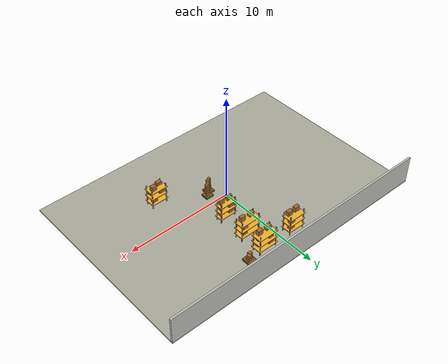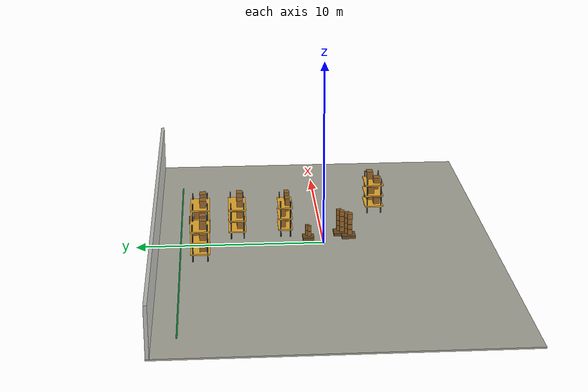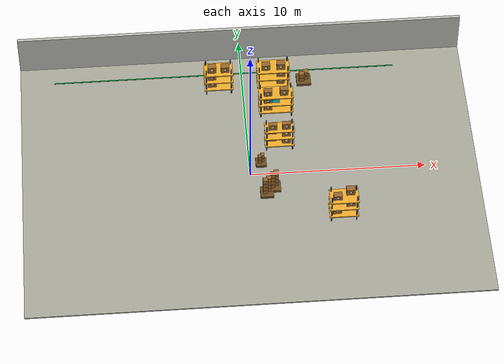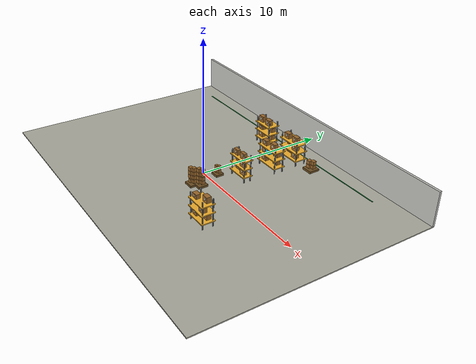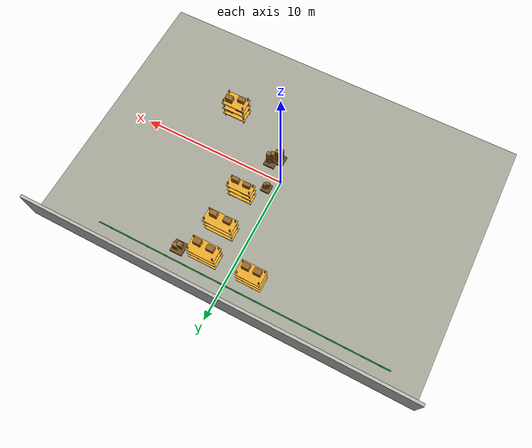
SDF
<sdf version="1.9">
 <world name="lidar_random_warehouse">
  <model name="floor">
   <static>true</static>
   <pose>0.000 0.000 -0.040 0 0 0</pose>
   <link name="link">
    <collision name="collision"><geometry><box><size>26.000 18.000 0.080</size></box></geometry></collision>
    <visual name="visual">
     <geometry><box><size>26.000 18.000 0.080</size></box></geometry>
     <material><ambient>0.50 0.50 0.47 1</ambient><diffuse>0.68 0.68 0.63 1</diffuse></material>
    </visual>
   </link>
  </model>
  <model name="main_aisle_right">
   <static>true</static>
   <pose>-1.000 7.650 0.006 0 0 0</pose>
   <link name="link">
    <collision name="collision"><geometry><box><size>20.000 0.070 0.012</size></box></geometry></collision>
    <visual name="visual">
     <geometry><box><size>20.000 0.070 0.012</size></box></geometry>
     <material><ambient>0.04 0.45 0.16 1</ambient><diffuse>0.04 0.55 0.20 1</diffuse></material>
    </visual>
   </link>
  </model>
  <model name="back_wall">
   <static>true</static>
   <pose>0.000 8.910 1.300 0 0 0</pose>
   <link name="link">
    <collision name="collision"><geometry><box><size>26.000 0.180 2.600</size></box></geometry></collision>
    <visual name="visual">
     <geometry><box><size>26.000 0.180 2.600</size></box></geometry>
     <material><ambient>0.66 0.66 0.64 1</ambient><diffuse>0.76 0.76 0.74 1</diffuse></material>
    </visual>
   </link>
  </model>
  <model name="shelf_9">
   <static>true</static>
   <pose>5.000 -3.200 0 0 0 0</pose>
   <link name="link">
    <collision name="collision">
     <pose>0 0 1.025 0 0 0</pose>
     <geometry><box><size>1.487 0.843 2.050</size></box></geometry>
    </collision>
    <visual name="post_0">
     <pose>-0.709 -0.386 1.025 0 0 0</pose>
     <geometry><box><size>0.070 0.070 2.050</size></box></geometry>
     <material><ambient>0.03 0.04 0.05 1</ambient><diffuse>0.05 0.06 0.07 1</diffuse></material>
    </visual>
    <visual name="post_1">
     <pose>-0.709 0.386 1.025 0 0 0</pose>
     <geometry><box><size>0.070 0.070 2.050</size></box></geometry>
     <material><ambient>0.03 0.04 0.05 1</ambient><diffuse>0.05 0.06 0.07 1</diffuse></material>
    </visual>
    <visual name="post_2">
     <pose>0.709 -0.386 1.025 0 0 0</pose>
     <geometry><box><size>0.070 0.070 2.050</size></box></geometry>
     <material><ambient>0.03 0.04 0.05 1</ambient><diffuse>0.05 0.06 0.07 1</diffuse></material>
    </visual>
    <visual name="post_3">
     <pose>0.709 0.386 1.025 0 0 0</pose>
     <geometry><box><size>0.070 0.070 2.050</size></box></geometry>
     <material><ambient>0.03 0.04 0.05 1</ambient><diffuse>0.05 0.06 0.07 1</diffuse></material>
    </visual>
    <visual name="deck_1">
     <pose>0.000 0.000 0.420 0 0 0</pose>
     <geometry><box><size>1.627 1.023 0.070</size></box></geometry>
     <material><ambient>0.70 0.52 0.18 1</ambient><diffuse>0.96 0.70 0.18 1</diffuse></material>
    </visual>
    <visual name="box_1_-0.4">
     <pose>-0.372 -0.152 0.693 0 0 0</pose>
     <geometry><box><size>0.480 0.340 0.386</size></box></geometry>
     <material><ambient>0.44 0.28 0.11 1</ambient><diffuse>0.62 0.42 0.18 1</diffuse></material>
    </visual>
    <visual name="label_1_-0.4">
     <pose>-0.372 -0.326 0.721 0 0 0</pose>
     <geometry><box><size>0.134 0.012 0.147</size></box></geometry>
     <material><ambient>0.86 0.86 0.76 1</ambient><diffuse>0.98 0.96 0.84 1</diffuse></material>
    </visual>
    <visual name="barcode_1_-0.4">
     <pose>-0.285 -0.330 0.721 0 0 0</pose>
     <geometry><box><size>0.029 0.014 0.131</size></box></geometry>
     <material><ambient>0.02 0.02 0.02 1</ambient><diffuse>0.02 0.02 0.02 1</diffuse></material>
    </visual>
    <visual name="box_1_0.4">
     <pose>0.372 0.152 0.698 0 0 0</pose>
     <geometry><box><size>0.480 0.340 0.396</size></box></geometry>
     <material><ambient>0.44 0.28 0.11 1</ambient><diffuse>0.62 0.42 0.18 1</diffuse></material>
    </visual>
    <visual name="label_1_0.4">
     <pose>0.372 -0.022 0.726 0 0 0</pose>
     <geometry><box><size>0.134 0.012 0.151</size></box></geometry>
     <material><ambient>0.86 0.86 0.76 1</ambient><diffuse>0.98 0.96 0.84 1</diffuse></material>
    </visual>
    <visual name="barcode_1_0.4">
     <pose>0.458 -0.026 0.726 0 0 0</pose>
     <geometry><box><size>0.029 0.014 0.135</size></box></geometry>
     <material><ambient>0.02 0.02 0.02 1</ambient><diffuse>0.02 0.02 0.02 1</diffuse></material>
    </visual>
    <visual name="deck_2">
     <pose>0.000 0.000 1.040 0 0 0</pose>
     <geometry><box><size>1.627 1.023 0.070</size></box></geometry>
     <material><ambient>0.70 0.52 0.18 1</ambient><diffuse>0.96 0.70 0.18 1</diffuse></material>
    </visual>
    <visual name="box_2_-0.4">
     <pose>-0.372 0.152 1.326 0 0 0</pose>
     <geometry><box><size>0.480 0.340 0.412</size></box></geometry>
     <material><ambient>0.44 0.28 0.11 1</ambient><diffuse>0.62 0.42 0.18 1</diffuse></material>
    </visual>
    <visual name="label_2_-0.4">
     <pose>-0.372 -0.022 1.354 0 0 0</pose>
     <geometry><box><size>0.134 0.012 0.157</size></box></geometry>
     <material><ambient>0.86 0.86 0.76 1</ambient><diffuse>0.98 0.96 0.84 1</diffuse></material>
    </visual>
    <visual name="barcode_2_-0.4">
     <pose>-0.285 -0.026 1.354 0 0 0</pose>
     <geometry><box><size>0.029 0.014 0.140</size></box></geometry>
     <material><ambient>0.02 0.02 0.02 1</ambient><diffuse>0.02 0.02 0.02 1</diffuse></material>
    </visual>
    <visual name="box_2_0.4">
     <pose>0.372 -0.152 1.302 0 0 0</pose>
     <geometry><box><size>0.480 0.340 0.363</size></box></geometry>
     <material><ambient>0.44 0.28 0.11 1</ambient><diffuse>0.62 0.42 0.18 1</diffuse></material>
    </visual>
    <visual name="label_2_0.4">
     <pose>0.372 -0.326 1.329 0 0 0</pose>
     <geometry><box><size>0.134 0.012 0.138</size></box></geometry>
     <material><ambient>0.86 0.86 0.76 1</ambient><diffuse>0.98 0.96 0.84 1</diffuse></material>
    </visual>
    <visual name="barcode_2_0.4">
     <pose>0.458 -0.330 1.329 0 0 0</pose>
     <geometry><box><size>0.029 0.014 0.124</size></box></geometry>
     <material><ambient>0.02 0.02 0.02 1</ambient><diffuse>0.02 0.02 0.02 1</diffuse></material>
    </visual>
    <visual name="deck_3">
     <pose>0.000 0.000 1.660 0 0 0</pose>
     <geometry><box><size>1.627 1.023 0.070</size></box></geometry>
     <material><ambient>0.70 0.52 0.18 1</ambient><diffuse>0.96 0.70 0.18 1</diffuse></material>
    </visual>
    <visual name="box_3_-0.4">
     <pose>-0.372 -0.152 1.900 0 0 0</pose>
     <geometry><box><size>0.480 0.340 0.320</size></box></geometry>
     <material><ambient>0.44 0.28 0.11 1</ambient><diffuse>0.62 0.42 0.18 1</diffuse></material>
    </visual>
    <visual name="label_3_-0.4">
     <pose>-0.372 -0.326 1.926 0 0 0</pose>
     <geometry><box><size>0.134 0.012 0.121</size></box></geometry>
     <material><ambient>0.86 0.86 0.76 1</ambient><diffuse>0.98 0.96 0.84 1</diffuse></material>
    </visual>
    <visual name="barcode_3_-0.4">
     <pose>-0.285 -0.330 1.926 0 0 0</pose>
     <geometry><box><size>0.029 0.014 0.109</size></box></geometry>
     <material><ambient>0.02 0.02 0.02 1</ambient><diffuse>0.02 0.02 0.02 1</diffuse></material>
    </visual>
    <visual name="box_3_0.4">
     <pose>0.372 0.152 1.955 0 0 0</pose>
     <geometry><box><size>0.480 0.340 0.430</size></box></geometry>
     <material><ambient>0.44 0.28 0.11 1</ambient><diffuse>0.62 0.42 0.18 1</diffuse></material>
    </visual>
    <visual name="label_3_0.4">
     <pose>0.372 -0.022 1.984 0 0 0</pose>
     <geometry><box><size>0.134 0.012 0.163</size></box></geometry>
     <material><ambient>0.86 0.86 0.76 1</ambient><diffuse>0.98 0.96 0.84 1</diffuse></material>
    </visual>
    <visual name="barcode_3_0.4">
     <pose>0.458 -0.026 1.984 0 0 0</pose>
     <geometry><box><size>0.029 0.014 0.146</size></box></geometry>
     <material><ambient>0.02 0.02 0.02 1</ambient><diffuse>0.02 0.02 0.02 1</diffuse></material>
    </visual>
   </link>
  </model>
  <model name="shelf_16">
   <static>true</static>
   <pose>1.800 2.000 0 0 0 0</pose>
   <link name="link">
    <collision name="collision">
     <pose>0 0 1.025 0 0 0</pose>
     <geometry><box><size>1.550 0.594 2.050</size></box></geometry>
    </collision>
    <visual name="post_0">
     <pose>-0.740 -0.262 1.025 0 0 0</pose>
     <geometry><box><size>0.070 0.070 2.050</size></box></geometry>
     <material><ambient>0.03 0.04 0.05 1</ambient><diffuse>0.05 0.06 0.07 1</diffuse></material>
    </visual>
    <visual name="post_1">
     <pose>-0.740 0.262 1.025 0 0 0</pose>
     <geometry><box><size>0.070 0.070 2.050</size></box></geometry>
     <material><ambient>0.03 0.04 0.05 1</ambient><diffuse>0.05 0.06 0.07 1</diffuse></material>
    </visual>
    <visual name="post_2">
     <pose>0.740 -0.262 1.025 0 0 0</pose>
     <geometry><box><size>0.070 0.070 2.050</size></box></geometry>
     <material><ambient>0.03 0.04 0.05 1</ambient><diffuse>0.05 0.06 0.07 1</diffuse></material>
    </visual>
    <visual name="post_3">
     <pose>0.740 0.262 1.025 0 0 0</pose>
     <geometry><box><size>0.070 0.070 2.050</size></box></geometry>
     <material><ambient>0.03 0.04 0.05 1</ambient><diffuse>0.05 0.06 0.07 1</diffuse></material>
    </visual>
    <visual name="deck_1">
     <pose>0.000 0.000 0.420 0 0 0</pose>
     <geometry><box><size>1.690 0.774 0.070</size></box></geometry>
     <material><ambient>0.70 0.52 0.18 1</ambient><diffuse>0.96 0.70 0.18 1</diffuse></material>
    </visual>
    <visual name="box_1_-0.4">
     <pose>-0.388 0.107 0.732 0 0 0</pose>
     <geometry><box><size>0.480 0.249 0.464</size></box></geometry>
     <material><ambient>0.44 0.28 0.11 1</ambient><diffuse>0.62 0.42 0.18 1</diffuse></material>
    </visual>
    <visual name="label_1_-0.4">
     <pose>-0.388 -0.022 0.761 0 0 0</pose>
     <geometry><box><size>0.134 0.012 0.176</size></box></geometry>
     <material><ambient>0.86 0.86 0.76 1</ambient><diffuse>0.98 0.96 0.84 1</diffuse></material>
    </visual>
    <visual name="barcode_1_-0.4">
     <pose>-0.301 -0.026 0.761 0 0 0</pose>
     <geometry><box><size>0.029 0.014 0.158</size></box></geometry>
     <material><ambient>0.02 0.02 0.02 1</ambient><diffuse>0.02 0.02 0.02 1</diffuse></material>
    </visual>
    <visual name="box_1_0.4">
     <pose>0.388 -0.107 0.726 0 0 0</pose>
     <geometry><box><size>0.480 0.249 0.451</size></box></geometry>
     <material><ambient>0.44 0.28 0.11 1</ambient><diffuse>0.62 0.42 0.18 1</diffuse></material>
    </visual>
    <visual name="label_1_0.4">
     <pose>0.388 -0.236 0.755 0 0 0</pose>
     <geometry><box><size>0.134 0.012 0.171</size></box></geometry>
     <material><ambient>0.86 0.86 0.76 1</ambient><diffuse>0.98 0.96 0.84 1</diffuse></material>
    </visual>
    <visual name="barcode_1_0.4">
     <pose>0.474 -0.240 0.755 0 0 0</pose>
     <geometry><box><size>0.029 0.014 0.153</size></box></geometry>
     <material><ambient>0.02 0.02 0.02 1</ambient><diffuse>0.02 0.02 0.02 1</diffuse></material>
    </visual>
    <visual name="deck_2">
     <pose>0.000 0.000 1.040 0 0 0</pose>
     <geometry><box><size>1.690 0.774 0.070</size></box></geometry>
     <material><ambient>0.70 0.52 0.18 1</ambient><diffuse>0.96 0.70 0.18 1</diffuse></material>
    </visual>
    <visual name="box_2_-0.4">
     <pose>-0.388 0.107 1.329 0 0 0</pose>
     <geometry><box><size>0.480 0.249 0.418</size></box></geometry>
     <material><ambient>0.44 0.28 0.11 1</ambient><diffuse>0.62 0.42 0.18 1</diffuse></material>
    </visual>
    <visual name="label_2_-0.4">
     <pose>-0.388 -0.022 1.358 0 0 0</pose>
     <geometry><box><size>0.134 0.012 0.159</size></box></geometry>
     <material><ambient>0.86 0.86 0.76 1</ambient><diffuse>0.98 0.96 0.84 1</diffuse></material>
    </visual>
    <visual name="barcode_2_-0.4">
     <pose>-0.301 -0.026 1.358 0 0 0</pose>
     <geometry><box><size>0.029 0.014 0.142</size></box></geometry>
     <material><ambient>0.02 0.02 0.02 1</ambient><diffuse>0.02 0.02 0.02 1</diffuse></material>
    </visual>
    <visual name="box_2_0.4">
     <pose>0.388 -0.107 1.353 0 0 0</pose>
     <geometry><box><size>0.480 0.249 0.466</size></box></geometry>
     <material><ambient>0.44 0.28 0.11 1</ambient><diffuse>0.62 0.42 0.18 1</diffuse></material>
    </visual>
    <visual name="label_2_0.4">
     <pose>0.388 -0.236 1.382 0 0 0</pose>
     <geometry><box><size>0.134 0.012 0.177</size></box></geometry>
     <material><ambient>0.86 0.86 0.76 1</ambient><diffuse>0.98 0.96 0.84 1</diffuse></material>
    </visual>
    <visual name="barcode_2_0.4">
     <pose>0.474 -0.240 1.382 0 0 0</pose>
     <geometry><box><size>0.029 0.014 0.158</size></box></geometry>
     <material><ambient>0.02 0.02 0.02 1</ambient><diffuse>0.02 0.02 0.02 1</diffuse></material>
    </visual>
    <visual name="deck_3">
     <pose>0.000 0.000 1.660 0 0 0</pose>
     <geometry><box><size>1.690 0.774 0.070</size></box></geometry>
     <material><ambient>0.70 0.52 0.18 1</ambient><diffuse>0.96 0.70 0.18 1</diffuse></material>
    </visual>
    <visual name="box_3_-0.4">
     <pose>-0.388 -0.107 1.942 0 0 0</pose>
     <geometry><box><size>0.480 0.249 0.403</size></box></geometry>
     <material><ambient>0.44 0.28 0.11 1</ambient><diffuse>0.62 0.42 0.18 1</diffuse></material>
    </visual>
    <visual name="label_3_-0.4">
     <pose>-0.388 -0.236 1.970 0 0 0</pose>
     <geometry><box><size>0.134 0.012 0.153</size></box></geometry>
     <material><ambient>0.86 0.86 0.76 1</ambient><diffuse>0.98 0.96 0.84 1</diffuse></material>
    </visual>
    <visual name="barcode_3_-0.4">
     <pose>-0.301 -0.240 1.970 0 0 0</pose>
     <geometry><box><size>0.029 0.014 0.137</size></box></geometry>
     <material><ambient>0.02 0.02 0.02 1</ambient><diffuse>0.02 0.02 0.02 1</diffuse></material>
    </visual>
    <visual name="box_3_0.4">
     <pose>0.388 -0.107 1.968 0 0 0</pose>
     <geometry><box><size>0.480 0.249 0.456</size></box></geometry>
     <material><ambient>0.44 0.28 0.11 1</ambient><diffuse>0.62 0.42 0.18 1</diffuse></material>
    </visual>
    <visual name="label_3_0.4">
     <pose>0.388 -0.236 1.997 0 0 0</pose>
     <geometry><box><size>0.134 0.012 0.173</size></box></geometry>
     <material><ambient>0.86 0.86 0.76 1</ambient><diffuse>0.98 0.96 0.84 1</diffuse></material>
    </visual>
    <visual name="barcode_3_0.4">
     <pose>0.474 -0.240 1.997 0 0 0</pose>
     <geometry><box><size>0.029 0.014 0.155</size></box></geometry>
     <material><ambient>0.02 0.02 0.02 1</ambient><diffuse>0.02 0.02 0.02 1</diffuse></material>
    </visual>
   </link>
  </model>
  <model name="shelf_20">
   <static>true</static>
   <pose>1.800 4.600 0 0 0 0</pose>
   <link name="link">
    <collision name="collision">
     <pose>0 0 1.025 0 0 0</pose>
     <geometry><box><size>1.852 0.761 2.050</size></box></geometry>
    </collision>
    <visual name="post_0">
     <pose>-0.891 -0.345 1.025 0 0 0</pose>
     <geometry><box><size>0.070 0.070 2.050</size></box></geometry>
     <material><ambient>0.03 0.04 0.05 1</ambient><diffuse>0.05 0.06 0.07 1</diffuse></material>
    </visual>
    <visual name="post_1">
     <pose>-0.891 0.345 1.025 0 0 0</pose>
     <geometry><box><size>0.070 0.070 2.050</size></box></geometry>
     <material><ambient>0.03 0.04 0.05 1</ambient><diffuse>0.05 0.06 0.07 1</diffuse></material>
    </visual>
    <visual name="post_2">
     <pose>0.891 -0.345 1.025 0 0 0</pose>
     <geometry><box><size>0.070 0.070 2.050</size></box></geometry>
     <material><ambient>0.03 0.04 0.05 1</ambient><diffuse>0.05 0.06 0.07 1</diffuse></material>
    </visual>
    <visual name="post_3">
     <pose>0.891 0.345 1.025 0 0 0</pose>
     <geometry><box><size>0.070 0.070 2.050</size></box></geometry>
     <material><ambient>0.03 0.04 0.05 1</ambient><diffuse>0.05 0.06 0.07 1</diffuse></material>
    </visual>
    <visual name="deck_1">
     <pose>0.000 0.000 0.420 0 0 0</pose>
     <geometry><box><size>1.992 0.941 0.070</size></box></geometry>
     <material><ambient>0.70 0.52 0.18 1</ambient><diffuse>0.96 0.70 0.18 1</diffuse></material>
    </visual>
    <visual name="box_1_-0.5">
     <pose>-0.463 -0.137 0.694 0 0 0</pose>
     <geometry><box><size>0.480 0.319 0.389</size></box></geometry>
     <material><ambient>0.44 0.28 0.11 1</ambient><diffuse>0.62 0.42 0.18 1</diffuse></material>
    </visual>
    <visual name="label_1_-0.5">
     <pose>-0.463 -0.301 0.722 0 0 0</pose>
     <geometry><box><size>0.134 0.012 0.148</size></box></geometry>
     <material><ambient>0.86 0.86 0.76 1</ambient><diffuse>0.98 0.96 0.84 1</diffuse></material>
    </visual>
    <visual name="barcode_1_-0.5">
     <pose>-0.377 -0.305 0.722 0 0 0</pose>
     <geometry><box><size>0.029 0.014 0.132</size></box></geometry>
     <material><ambient>0.02 0.02 0.02 1</ambient><diffuse>0.02 0.02 0.02 1</diffuse></material>
    </visual>
    <visual name="box_1_0.5">
     <pose>0.463 0.137 0.667 0 0 0</pose>
     <geometry><box><size>0.480 0.319 0.334</size></box></geometry>
     <material><ambient>0.44 0.28 0.11 1</ambient><diffuse>0.62 0.42 0.18 1</diffuse></material>
    </visual>
    <visual name="label_1_0.5">
     <pose>0.463 -0.027 0.693 0 0 0</pose>
     <geometry><box><size>0.134 0.012 0.127</size></box></geometry>
     <material><ambient>0.86 0.86 0.76 1</ambient><diffuse>0.98 0.96 0.84 1</diffuse></material>
    </visual>
    <visual name="barcode_1_0.5">
     <pose>0.549 -0.031 0.693 0 0 0</pose>
     <geometry><box><size>0.029 0.014 0.113</size></box></geometry>
     <material><ambient>0.02 0.02 0.02 1</ambient><diffuse>0.02 0.02 0.02 1</diffuse></material>
    </visual>
    <visual name="deck_2">
     <pose>0.000 0.000 1.040 0 0 0</pose>
     <geometry><box><size>1.992 0.941 0.070</size></box></geometry>
     <material><ambient>0.70 0.52 0.18 1</ambient><diffuse>0.96 0.70 0.18 1</diffuse></material>
    </visual>
    <visual name="box_2_-0.5">
     <pose>-0.463 -0.137 1.287 0 0 0</pose>
     <geometry><box><size>0.480 0.319 0.334</size></box></geometry>
     <material><ambient>0.44 0.28 0.11 1</ambient><diffuse>0.62 0.42 0.18 1</diffuse></material>
    </visual>
    <visual name="label_2_-0.5">
     <pose>-0.463 -0.301 1.314 0 0 0</pose>
     <geometry><box><size>0.134 0.012 0.127</size></box></geometry>
     <material><ambient>0.86 0.86 0.76 1</ambient><diffuse>0.98 0.96 0.84 1</diffuse></material>
    </visual>
    <visual name="barcode_2_-0.5">
     <pose>-0.377 -0.305 1.314 0 0 0</pose>
     <geometry><box><size>0.029 0.014 0.114</size></box></geometry>
     <material><ambient>0.02 0.02 0.02 1</ambient><diffuse>0.02 0.02 0.02 1</diffuse></material>
    </visual>
    <visual name="box_2_0.5">
     <pose>0.463 0.137 1.307 0 0 0</pose>
     <geometry><box><size>0.480 0.319 0.373</size></box></geometry>
     <material><ambient>0.44 0.28 0.11 1</ambient><diffuse>0.62 0.42 0.18 1</diffuse></material>
    </visual>
    <visual name="label_2_0.5">
     <pose>0.463 -0.027 1.334 0 0 0</pose>
     <geometry><box><size>0.134 0.012 0.142</size></box></geometry>
     <material><ambient>0.86 0.86 0.76 1</ambient><diffuse>0.98 0.96 0.84 1</diffuse></material>
    </visual>
    <visual name="barcode_2_0.5">
     <pose>0.549 -0.031 1.334 0 0 0</pose>
     <geometry><box><size>0.029 0.014 0.127</size></box></geometry>
     <material><ambient>0.02 0.02 0.02 1</ambient><diffuse>0.02 0.02 0.02 1</diffuse></material>
    </visual>
    <visual name="deck_3">
     <pose>0.000 0.000 1.660 0 0 0</pose>
     <geometry><box><size>1.992 0.941 0.070</size></box></geometry>
     <material><ambient>0.70 0.52 0.18 1</ambient><diffuse>0.96 0.70 0.18 1</diffuse></material>
    </visual>
    <visual name="box_3_-0.5">
     <pose>-0.463 -0.137 1.923 0 0 0</pose>
     <geometry><box><size>0.480 0.319 0.365</size></box></geometry>
     <material><ambient>0.44 0.28 0.11 1</ambient><diffuse>0.62 0.42 0.18 1</diffuse></material>
    </visual>
    <visual name="label_3_-0.5">
     <pose>-0.463 -0.301 1.950 0 0 0</pose>
     <geometry><box><size>0.134 0.012 0.139</size></box></geometry>
     <material><ambient>0.86 0.86 0.76 1</ambient><diffuse>0.98 0.96 0.84 1</diffuse></material>
    </visual>
    <visual name="barcode_3_-0.5">
     <pose>-0.377 -0.305 1.950 0 0 0</pose>
     <geometry><box><size>0.029 0.014 0.124</size></box></geometry>
     <material><ambient>0.02 0.02 0.02 1</ambient><diffuse>0.02 0.02 0.02 1</diffuse></material>
    </visual>
    <visual name="box_3_0.5">
     <pose>0.463 -0.137 1.977 0 0 0</pose>
     <geometry><box><size>0.480 0.319 0.473</size></box></geometry>
     <material><ambient>0.44 0.28 0.11 1</ambient><diffuse>0.62 0.42 0.18 1</diffuse></material>
    </visual>
    <visual name="label_3_0.5">
     <pose>0.463 -0.301 2.006 0 0 0</pose>
     <geometry><box><size>0.134 0.012 0.180</size></box></geometry>
     <material><ambient>0.86 0.86 0.76 1</ambient><diffuse>0.98 0.96 0.84 1</diffuse></material>
    </visual>
    <visual name="barcode_3_0.5">
     <pose>0.549 -0.305 2.006 0 0 0</pose>
     <geometry><box><size>0.029 0.014 0.161</size></box></geometry>
     <material><ambient>0.02 0.02 0.02 1</ambient><diffuse>0.02 0.02 0.02 1</diffuse></material>
    </visual>
   </link>
  </model>
  <model name="shelf_24">
   <static>true</static>
   <pose>-1.400 6.600 0 0 0 0</pose>
   <link name="link">
    <collision name="collision">
     <pose>0 0 1.025 0 0 0</pose>
     <geometry><box><size>1.523 0.835 2.050</size></box></geometry>
    </collision>
    <visual name="post_0">
     <pose>-0.727 -0.383 1.025 0 0 0</pose>
     <geometry><box><size>0.070 0.070 2.050</size></box></geometry>
     <material><ambient>0.03 0.04 0.05 1</ambient><diffuse>0.05 0.06 0.07 1</diffuse></material>
    </visual>
    <visual name="post_1">
     <pose>-0.727 0.383 1.025 0 0 0</pose>
     <geometry><box><size>0.070 0.070 2.050</size></box></geometry>
     <material><ambient>0.03 0.04 0.05 1</ambient><diffuse>0.05 0.06 0.07 1</diffuse></material>
    </visual>
    <visual name="post_2">
     <pose>0.727 -0.383 1.025 0 0 0</pose>
     <geometry><box><size>0.070 0.070 2.050</size></box></geometry>
     <material><ambient>0.03 0.04 0.05 1</ambient><diffuse>0.05 0.06 0.07 1</diffuse></material>
    </visual>
    <visual name="post_3">
     <pose>0.727 0.383 1.025 0 0 0</pose>
     <geometry><box><size>0.070 0.070 2.050</size></box></geometry>
     <material><ambient>0.03 0.04 0.05 1</ambient><diffuse>0.05 0.06 0.07 1</diffuse></material>
    </visual>
    <visual name="deck_1">
     <pose>0.000 0.000 0.420 0 0 0</pose>
     <geometry><box><size>1.663 1.015 0.070</size></box></geometry>
     <material><ambient>0.70 0.52 0.18 1</ambient><diffuse>0.96 0.70 0.18 1</diffuse></material>
    </visual>
    <visual name="box_1_-0.4">
     <pose>-0.381 -0.150 0.728 0 0 0</pose>
     <geometry><box><size>0.480 0.340 0.455</size></box></geometry>
     <material><ambient>0.44 0.28 0.11 1</ambient><diffuse>0.62 0.42 0.18 1</diffuse></material>
    </visual>
    <visual name="label_1_-0.4">
     <pose>-0.381 -0.324 0.757 0 0 0</pose>
     <geometry><box><size>0.134 0.012 0.173</size></box></geometry>
     <material><ambient>0.86 0.86 0.76 1</ambient><diffuse>0.98 0.96 0.84 1</diffuse></material>
    </visual>
    <visual name="barcode_1_-0.4">
     <pose>-0.294 -0.328 0.757 0 0 0</pose>
     <geometry><box><size>0.029 0.014 0.155</size></box></geometry>
     <material><ambient>0.02 0.02 0.02 1</ambient><diffuse>0.02 0.02 0.02 1</diffuse></material>
    </visual>
    <visual name="box_1_0.4">
     <pose>0.381 0.150 0.692 0 0 0</pose>
     <geometry><box><size>0.480 0.340 0.384</size></box></geometry>
     <material><ambient>0.44 0.28 0.11 1</ambient><diffuse>0.62 0.42 0.18 1</diffuse></material>
    </visual>
    <visual name="label_1_0.4">
     <pose>0.381 -0.024 0.720 0 0 0</pose>
     <geometry><box><size>0.134 0.012 0.146</size></box></geometry>
     <material><ambient>0.86 0.86 0.76 1</ambient><diffuse>0.98 0.96 0.84 1</diffuse></material>
    </visual>
    <visual name="barcode_1_0.4">
     <pose>0.467 -0.028 0.720 0 0 0</pose>
     <geometry><box><size>0.029 0.014 0.130</size></box></geometry>
     <material><ambient>0.02 0.02 0.02 1</ambient><diffuse>0.02 0.02 0.02 1</diffuse></material>
    </visual>
    <visual name="deck_2">
     <pose>0.000 0.000 1.040 0 0 0</pose>
     <geometry><box><size>1.663 1.015 0.070</size></box></geometry>
     <material><ambient>0.70 0.52 0.18 1</ambient><diffuse>0.96 0.70 0.18 1</diffuse></material>
    </visual>
    <visual name="box_2_-0.4">
     <pose>-0.381 -0.150 1.276 0 0 0</pose>
     <geometry><box><size>0.480 0.340 0.312</size></box></geometry>
     <material><ambient>0.44 0.28 0.11 1</ambient><diffuse>0.62 0.42 0.18 1</diffuse></material>
    </visual>
    <visual name="label_2_-0.4">
     <pose>-0.381 -0.324 1.302 0 0 0</pose>
     <geometry><box><size>0.134 0.012 0.118</size></box></geometry>
     <material><ambient>0.86 0.86 0.76 1</ambient><diffuse>0.98 0.96 0.84 1</diffuse></material>
    </visual>
    <visual name="barcode_2_-0.4">
     <pose>-0.294 -0.328 1.302 0 0 0</pose>
     <geometry><box><size>0.029 0.014 0.106</size></box></geometry>
     <material><ambient>0.02 0.02 0.02 1</ambient><diffuse>0.02 0.02 0.02 1</diffuse></material>
    </visual>
    <visual name="box_2_0.4">
     <pose>0.381 0.150 1.289 0 0 0</pose>
     <geometry><box><size>0.480 0.340 0.337</size></box></geometry>
     <material><ambient>0.44 0.28 0.11 1</ambient><diffuse>0.62 0.42 0.18 1</diffuse></material>
    </visual>
    <visual name="label_2_0.4">
     <pose>0.381 -0.024 1.315 0 0 0</pose>
     <geometry><box><size>0.134 0.012 0.128</size></box></geometry>
     <material><ambient>0.86 0.86 0.76 1</ambient><diffuse>0.98 0.96 0.84 1</diffuse></material>
    </visual>
    <visual name="barcode_2_0.4">
     <pose>0.467 -0.028 1.315 0 0 0</pose>
     <geometry><box><size>0.029 0.014 0.115</size></box></geometry>
     <material><ambient>0.02 0.02 0.02 1</ambient><diffuse>0.02 0.02 0.02 1</diffuse></material>
    </visual>
    <visual name="deck_3">
     <pose>0.000 0.000 1.660 0 0 0</pose>
     <geometry><box><size>1.663 1.015 0.070</size></box></geometry>
     <material><ambient>0.70 0.52 0.18 1</ambient><diffuse>0.96 0.70 0.18 1</diffuse></material>
    </visual>
    <visual name="box_3_-0.4">
     <pose>-0.381 -0.150 1.969 0 0 0</pose>
     <geometry><box><size>0.480 0.340 0.458</size></box></geometry>
     <material><ambient>0.44 0.28 0.11 1</ambient><diffuse>0.62 0.42 0.18 1</diffuse></material>
    </visual>
    <visual name="label_3_-0.4">
     <pose>-0.381 -0.324 1.998 0 0 0</pose>
     <geometry><box><size>0.134 0.012 0.174</size></box></geometry>
     <material><ambient>0.86 0.86 0.76 1</ambient><diffuse>0.98 0.96 0.84 1</diffuse></material>
    </visual>
    <visual name="barcode_3_-0.4">
     <pose>-0.294 -0.328 1.998 0 0 0</pose>
     <geometry><box><size>0.029 0.014 0.156</size></box></geometry>
     <material><ambient>0.02 0.02 0.02 1</ambient><diffuse>0.02 0.02 0.02 1</diffuse></material>
    </visual>
    <visual name="box_3_0.4">
     <pose>0.381 -0.150 1.958 0 0 0</pose>
     <geometry><box><size>0.480 0.340 0.436</size></box></geometry>
     <material><ambient>0.44 0.28 0.11 1</ambient><diffuse>0.62 0.42 0.18 1</diffuse></material>
    </visual>
    <visual name="label_3_0.4">
     <pose>0.381 -0.324 1.987 0 0 0</pose>
     <geometry><box><size>0.134 0.012 0.166</size></box></geometry>
     <material><ambient>0.86 0.86 0.76 1</ambient><diffuse>0.98 0.96 0.84 1</diffuse></material>
    </visual>
    <visual name="barcode_3_0.4">
     <pose>0.467 -0.328 1.987 0 0 0</pose>
     <geometry><box><size>0.029 0.014 0.148</size></box></geometry>
     <material><ambient>0.02 0.02 0.02 1</ambient><diffuse>0.02 0.02 0.02 1</diffuse></material>
    </visual>
   </link>
  </model>
  <model name="shelf_25">
   <static>true</static>
   <pose>1.800 6.600 0 0 0 0</pose>
   <link name="link">
    <collision name="collision">
     <pose>0 0 1.025 0 0 0</pose>
     <geometry><box><size>1.752 0.851 2.050</size></box></geometry>
    </collision>
    <visual name="post_0">
     <pose>-0.841 -0.390 1.025 0 0 0</pose>
     <geometry><box><size>0.070 0.070 2.050</size></box></geometry>
     <material><ambient>0.03 0.04 0.05 1</ambient><diffuse>0.05 0.06 0.07 1</diffuse></material>
    </visual>
    <visual name="post_1">
     <pose>-0.841 0.390 1.025 0 0 0</pose>
     <geometry><box><size>0.070 0.070 2.050</size></box></geometry>
     <material><ambient>0.03 0.04 0.05 1</ambient><diffuse>0.05 0.06 0.07 1</diffuse></material>
    </visual>
    <visual name="post_2">
     <pose>0.841 -0.390 1.025 0 0 0</pose>
     <geometry><box><size>0.070 0.070 2.050</size></box></geometry>
     <material><ambient>0.03 0.04 0.05 1</ambient><diffuse>0.05 0.06 0.07 1</diffuse></material>
    </visual>
    <visual name="post_3">
     <pose>0.841 0.390 1.025 0 0 0</pose>
     <geometry><box><size>0.070 0.070 2.050</size></box></geometry>
     <material><ambient>0.03 0.04 0.05 1</ambient><diffuse>0.05 0.06 0.07 1</diffuse></material>
    </visual>
    <visual name="deck_1">
     <pose>0.000 0.000 0.420 0 0 0</pose>
     <geometry><box><size>1.892 1.031 0.070</size></box></geometry>
     <material><ambient>0.70 0.52 0.18 1</ambient><diffuse>0.96 0.70 0.18 1</diffuse></material>
    </visual>
    <visual name="box_1_-0.4">
     <pose>-0.438 0.153 0.732 0 0 0</pose>
     <geometry><box><size>0.480 0.340 0.464</size></box></geometry>
     <material><ambient>0.44 0.28 0.11 1</ambient><diffuse>0.62 0.42 0.18 1</diffuse></material>
    </visual>
    <visual name="label_1_-0.4">
     <pose>-0.438 -0.021 0.761 0 0 0</pose>
     <geometry><box><size>0.134 0.012 0.176</size></box></geometry>
     <material><ambient>0.86 0.86 0.76 1</ambient><diffuse>0.98 0.96 0.84 1</diffuse></material>
    </visual>
    <visual name="barcode_1_-0.4">
     <pose>-0.351 -0.025 0.761 0 0 0</pose>
     <geometry><box><size>0.029 0.014 0.158</size></box></geometry>
     <material><ambient>0.02 0.02 0.02 1</ambient><diffuse>0.02 0.02 0.02 1</diffuse></material>
    </visual>
    <visual name="box_1_0.4">
     <pose>0.438 -0.153 0.726 0 0 0</pose>
     <geometry><box><size>0.480 0.340 0.451</size></box></geometry>
     <material><ambient>0.44 0.28 0.11 1</ambient><diffuse>0.62 0.42 0.18 1</diffuse></material>
    </visual>
    <visual name="label_1_0.4">
     <pose>0.438 -0.327 0.755 0 0 0</pose>
     <geometry><box><size>0.134 0.012 0.171</size></box></geometry>
     <material><ambient>0.86 0.86 0.76 1</ambient><diffuse>0.98 0.96 0.84 1</diffuse></material>
    </visual>
    <visual name="barcode_1_0.4">
     <pose>0.524 -0.331 0.755 0 0 0</pose>
     <geometry><box><size>0.029 0.014 0.153</size></box></geometry>
     <material><ambient>0.02 0.02 0.02 1</ambient><diffuse>0.02 0.02 0.02 1</diffuse></material>
    </visual>
    <visual name="deck_2">
     <pose>0.000 0.000 1.040 0 0 0</pose>
     <geometry><box><size>1.892 1.031 0.070</size></box></geometry>
     <material><ambient>0.70 0.52 0.18 1</ambient><diffuse>0.96 0.70 0.18 1</diffuse></material>
    </visual>
    <visual name="box_2_-0.4">
     <pose>-0.438 0.153 1.329 0 0 0</pose>
     <geometry><box><size>0.480 0.340 0.418</size></box></geometry>
     <material><ambient>0.44 0.28 0.11 1</ambient><diffuse>0.62 0.42 0.18 1</diffuse></material>
    </visual>
    <visual name="label_2_-0.4">
     <pose>-0.438 -0.021 1.358 0 0 0</pose>
     <geometry><box><size>0.134 0.012 0.159</size></box></geometry>
     <material><ambient>0.86 0.86 0.76 1</ambient><diffuse>0.98 0.96 0.84 1</diffuse></material>
    </visual>
    <visual name="barcode_2_-0.4">
     <pose>-0.351 -0.025 1.358 0 0 0</pose>
     <geometry><box><size>0.029 0.014 0.142</size></box></geometry>
     <material><ambient>0.02 0.02 0.02 1</ambient><diffuse>0.02 0.02 0.02 1</diffuse></material>
    </visual>
    <visual name="box_2_0.4">
     <pose>0.438 -0.153 1.353 0 0 0</pose>
     <geometry><box><size>0.480 0.340 0.466</size></box></geometry>
     <material><ambient>0.44 0.28 0.11 1</ambient><diffuse>0.62 0.42 0.18 1</diffuse></material>
    </visual>
    <visual name="label_2_0.4">
     <pose>0.438 -0.327 1.382 0 0 0</pose>
     <geometry><box><size>0.134 0.012 0.177</size></box></geometry>
     <material><ambient>0.86 0.86 0.76 1</ambient><diffuse>0.98 0.96 0.84 1</diffuse></material>
    </visual>
    <visual name="barcode_2_0.4">
     <pose>0.524 -0.331 1.382 0 0 0</pose>
     <geometry><box><size>0.029 0.014 0.158</size></box></geometry>
     <material><ambient>0.02 0.02 0.02 1</ambient><diffuse>0.02 0.02 0.02 1</diffuse></material>
    </visual>
    <visual name="deck_3">
     <pose>0.000 0.000 1.660 0 0 0</pose>
     <geometry><box><size>1.892 1.031 0.070</size></box></geometry>
     <material><ambient>0.70 0.52 0.18 1</ambient><diffuse>0.96 0.70 0.18 1</diffuse></material>
    </visual>
    <visual name="box_3_-0.4">
     <pose>-0.438 -0.153 1.942 0 0 0</pose>
     <geometry><box><size>0.480 0.340 0.403</size></box></geometry>
     <material><ambient>0.44 0.28 0.11 1</ambient><diffuse>0.62 0.42 0.18 1</diffuse></material>
    </visual>
    <visual name="label_3_-0.4">
     <pose>-0.438 -0.327 1.970 0 0 0</pose>
     <geometry><box><size>0.134 0.012 0.153</size></box></geometry>
     <material><ambient>0.86 0.86 0.76 1</ambient><diffuse>0.98 0.96 0.84 1</diffuse></material>
    </visual>
    <visual name="barcode_3_-0.4">
     <pose>-0.351 -0.331 1.970 0 0 0</pose>
     <geometry><box><size>0.029 0.014 0.137</size></box></geometry>
     <material><ambient>0.02 0.02 0.02 1</ambient><diffuse>0.02 0.02 0.02 1</diffuse></material>
    </visual>
    <visual name="box_3_0.4">
     <pose>0.438 -0.153 1.968 0 0 0</pose>
     <geometry><box><size>0.480 0.340 0.456</size></box></geometry>
     <material><ambient>0.44 0.28 0.11 1</ambient><diffuse>0.62 0.42 0.18 1</diffuse></material>
    </visual>
    <visual name="label_3_0.4">
     <pose>0.438 -0.327 1.997 0 0 0</pose>
     <geometry><box><size>0.134 0.012 0.173</size></box></geometry>
     <material><ambient>0.86 0.86 0.76 1</ambient><diffuse>0.98 0.96 0.84 1</diffuse></material>
    </visual>
    <visual name="barcode_3_0.4">
     <pose>0.524 -0.331 1.997 0 0 0</pose>
     <geometry><box><size>0.029 0.014 0.155</size></box></geometry>
     <material><ambient>0.02 0.02 0.02 1</ambient><diffuse>0.02 0.02 0.02 1</diffuse></material>
    </visual>
   </link>
  </model>
  <model name="pallet_stack_1">
   <static>true</static>
   <pose>1.268 -0.997 0 0 0 0</pose>
   <link name="link">
    <collision name="collision">
     <pose>0 0 0.55 0 0 0</pose>
     <geometry><box><size>0.746 0.746 1.10</size></box></geometry>
    </collision>
    <visual name="pallet">
     <pose>0.000 0.000 0.080 0 0 0</pose>
     <geometry><box><size>0.746 0.746 0.160</size></box></geometry>
     <material><ambient>0.30 0.21 0.10 1</ambient><diffuse>0.44 0.32 0.14 1</diffuse></material>
    </visual>
    <visual name="case_0_a">
     <pose>-0.102 -0.068 0.340 0 0 0</pose>
     <geometry><box><size>0.271 0.254 0.280</size></box></geometry>
     <material><ambient>0.44 0.28 0.11 1</ambient><diffuse>0.62 0.42 0.18 1</diffuse></material>
    </visual>
    <visual name="case_0_b">
     <pose>0.102 0.068 0.340 0 0 0</pose>
     <geometry><box><size>0.271 0.254 0.280</size></box></geometry>
     <material><ambient>0.44 0.28 0.11 1</ambient><diffuse>0.62 0.42 0.18 1</diffuse></material>
    </visual>
    <visual name="case_1_a">
     <pose>-0.102 -0.068 0.640 0 0 0</pose>
     <geometry><box><size>0.271 0.254 0.280</size></box></geometry>
     <material><ambient>0.44 0.28 0.11 1</ambient><diffuse>0.62 0.42 0.18 1</diffuse></material>
    </visual>
    <visual name="case_1_b">
     <pose>0.102 0.068 0.640 0 0 0</pose>
     <geometry><box><size>0.271 0.254 0.280</size></box></geometry>
     <material><ambient>0.44 0.28 0.11 1</ambient><diffuse>0.62 0.42 0.18 1</diffuse></material>
    </visual>
    <visual name="case_2_a">
     <pose>-0.102 -0.068 0.940 0 0 0</pose>
     <geometry><box><size>0.271 0.254 0.280</size></box></geometry>
     <material><ambient>0.44 0.28 0.11 1</ambient><diffuse>0.62 0.42 0.18 1</diffuse></material>
    </visual>
    <visual name="case_2_b">
     <pose>0.102 0.068 0.940 0 0 0</pose>
     <geometry><box><size>0.271 0.254 0.280</size></box></geometry>
     <material><ambient>0.44 0.28 0.11 1</ambient><diffuse>0.62 0.42 0.18 1</diffuse></material>
    </visual>
    <visual name="case_3_a">
     <pose>-0.102 -0.068 1.240 0 0 0</pose>
     <geometry><box><size>0.271 0.254 0.280</size></box></geometry>
     <material><ambient>0.44 0.28 0.11 1</ambient><diffuse>0.62 0.42 0.18 1</diffuse></material>
    </visual>
    <visual name="case_3_b">
     <pose>0.102 0.068 1.240 0 0 0</pose>
     <geometry><box><size>0.271 0.254 0.280</size></box></geometry>
     <material><ambient>0.44 0.28 0.11 1</ambient><diffuse>0.62 0.42 0.18 1</diffuse></material>
    </visual>
   </link>
  </model>
  <model name="pallet_stack_2">
   <static>true</static>
   <pose>0.655 0.792 0 0 0 0</pose>
   <link name="link">
    <collision name="collision">
     <pose>0 0 0.55 0 0 0</pose>
     <geometry><box><size>0.609 0.609 1.10</size></box></geometry>
    </collision>
    <visual name="pallet">
     <pose>0.000 0.000 0.080 0 0 0</pose>
     <geometry><box><size>0.609 0.609 0.160</size></box></geometry>
     <material><ambient>0.30 0.21 0.10 1</ambient><diffuse>0.44 0.32 0.14 1</diffuse></material>
    </visual>
    <visual name="case_0_a">
     <pose>-0.077 -0.051 0.340 0 0 0</pose>
     <geometry><box><size>0.206 0.193 0.280</size></box></geometry>
     <material><ambient>0.44 0.28 0.11 1</ambient><diffuse>0.62 0.42 0.18 1</diffuse></material>
    </visual>
    <visual name="case_0_b">
     <pose>0.077 0.051 0.340 0 0 0</pose>
     <geometry><box><size>0.206 0.193 0.280</size></box></geometry>
     <material><ambient>0.44 0.28 0.11 1</ambient><diffuse>0.62 0.42 0.18 1</diffuse></material>
    </visual>
    <visual name="case_1_a">
     <pose>-0.077 -0.051 0.640 0 0 0</pose>
     <geometry><box><size>0.206 0.193 0.280</size></box></geometry>
     <material><ambient>0.44 0.28 0.11 1</ambient><diffuse>0.62 0.42 0.18 1</diffuse></material>
    </visual>
    <visual name="case_1_b">
     <pose>0.077 0.051 0.640 0 0 0</pose>
     <geometry><box><size>0.206 0.193 0.280</size></box></geometry>
     <material><ambient>0.44 0.28 0.11 1</ambient><diffuse>0.62 0.42 0.18 1</diffuse></material>
    </visual>
   </link>
  </model>
  <model name="pallet_stack_8">
   <static>true</static>
   <pose>3.621 6.839 0 0 0 0</pose>
   <link name="link">
    <collision name="collision">
     <pose>0 0 0.55 0 0 0</pose>
     <geometry><box><size>0.830 0.830 1.10</size></box></geometry>
    </collision>
    <visual name="pallet">
     <pose>0.000 0.000 0.080 0 0 0</pose>
     <geometry><box><size>0.830 0.830 0.160</size></box></geometry>
     <material><ambient>0.30 0.21 0.10 1</ambient><diffuse>0.44 0.32 0.14 1</diffuse></material>
    </visual>
    <visual name="case_0_a">
     <pose>-0.117 -0.078 0.340 0 0 0</pose>
     <geometry><box><size>0.312 0.292 0.280</size></box></geometry>
     <material><ambient>0.44 0.28 0.11 1</ambient><diffuse>0.62 0.42 0.18 1</diffuse></material>
    </visual>
    <visual name="case_0_b">
     <pose>0.117 0.078 0.340 0 0 0</pose>
     <geometry><box><size>0.312 0.292 0.280</size></box></geometry>
     <material><ambient>0.44 0.28 0.11 1</ambient><diffuse>0.62 0.42 0.18 1</diffuse></material>
    </visual>
    <visual name="case_1_a">
     <pose>-0.117 -0.078 0.640 0 0 0</pose>
     <geometry><box><size>0.312 0.292 0.280</size></box></geometry>
     <material><ambient>0.44 0.28 0.11 1</ambient><diffuse>0.62 0.42 0.18 1</diffuse></material>
    </visual>
    <visual name="case_1_b">
     <pose>0.117 0.078 0.640 0 0 0</pose>
     <geometry><box><size>0.312 0.292 0.280</size></box></geometry>
     <material><ambient>0.44 0.28 0.11 1</ambient><diffuse>0.62 0.42 0.18 1</diffuse></material>
    </visual>
   </link>
  </model>
  <model name="pallet_stack_15">
   <static>true</static>
   <pose>0.830 -1.393 0 0 0 0</pose>
   <link name="link">
    <collision name="collision">
     <pose>0 0 0.55 0 0 0</pose>
     <geometry><box><size>0.743 0.743 1.10</size></box></geometry>
    </collision>
    <visual name="pallet">
     <pose>0.000 0.000 0.080 0 0 0</pose>
     <geometry><box><size>0.743 0.743 0.160</size></box></geometry>
     <material><ambient>0.30 0.21 0.10 1</ambient><diffuse>0.44 0.32 0.14 1</diffuse></material>
    </visual>
    <visual name="case_0_a">
     <pose>-0.101 -0.068 0.340 0 0 0</pose>
     <geometry><box><size>0.270 0.253 0.280</size></box></geometry>
     <material><ambient>0.44 0.28 0.11 1</ambient><diffuse>0.62 0.42 0.18 1</diffuse></material>
    </visual>
    <visual name="case_0_b">
     <pose>0.101 0.068 0.340 0 0 0</pose>
     <geometry><box><size>0.270 0.253 0.280</size></box></geometry>
     <material><ambient>0.44 0.28 0.11 1</ambient><diffuse>0.62 0.42 0.18 1</diffuse></material>
    </visual>
    <visual name="case_1_a">
     <pose>-0.101 -0.068 0.640 0 0 0</pose>
     <geometry><box><size>0.270 0.253 0.280</size></box></geometry>
     <material><ambient>0.44 0.28 0.11 1</ambient><diffuse>0.62 0.42 0.18 1</diffuse></material>
    </visual>
    <visual name="case_1_b">
     <pose>0.101 0.068 0.640 0 0 0</pose>
     <geometry><box><size>0.270 0.253 0.280</size></box></geometry>
     <material><ambient>0.44 0.28 0.11 1</ambient><diffuse>0.62 0.42 0.18 1</diffuse></material>
    </visual>
    <visual name="case_2_a">
     <pose>-0.101 -0.068 0.940 0 0 0</pose>
     <geometry><box><size>0.270 0.253 0.280</size></box></geometry>
     <material><ambient>0.44 0.28 0.11 1</ambient><diffuse>0.62 0.42 0.18 1</diffuse></material>
    </visual>
    <visual name="case_2_b">
     <pose>0.101 0.068 0.940 0 0 0</pose>
     <geometry><box><size>0.270 0.253 0.280</size></box></geometry>
     <material><ambient>0.44 0.28 0.11 1</ambient><diffuse>0.62 0.42 0.18 1</diffuse></material>
    </visual>
    <visual name="case_3_a">
     <pose>-0.101 -0.068 1.240 0 0 0</pose>
     <geometry><box><size>0.270 0.253 0.280</size></box></geometry>
     <material><ambient>0.44 0.28 0.11 1</ambient><diffuse>0.62 0.42 0.18 1</diffuse></material>
    </visual>
    <visual name="case_3_b">
     <pose>0.101 0.068 1.240 0 0 0</pose>
     <geometry><box><size>0.270 0.253 0.280</size></box></geometry>
     <material><ambient>0.44 0.28 0.11 1</ambient><diffuse>0.62 0.42 0.18 1</diffuse></material>
    </visual>
   </link>
  </model>
  <model name="item_ProductC">
   <static>false</static>
   <pose>1.800 4.400 1.380 0 0 0</pose>
   <link name="link">
    <collision name="collision"><geometry><box><size>0.420 0.340 0.300</size></box></geometry></collision>
    <visual name="visual">
     <geometry><box><size>0.420 0.340 0.300</size></box></geometry>
     <material><ambient>0.02 0.58 0.62 1</ambient><diffuse>0.04 0.84 0.90 1</diffuse></material>
    </visual>
   </link>
  </model>
 </world>
</sdf>
